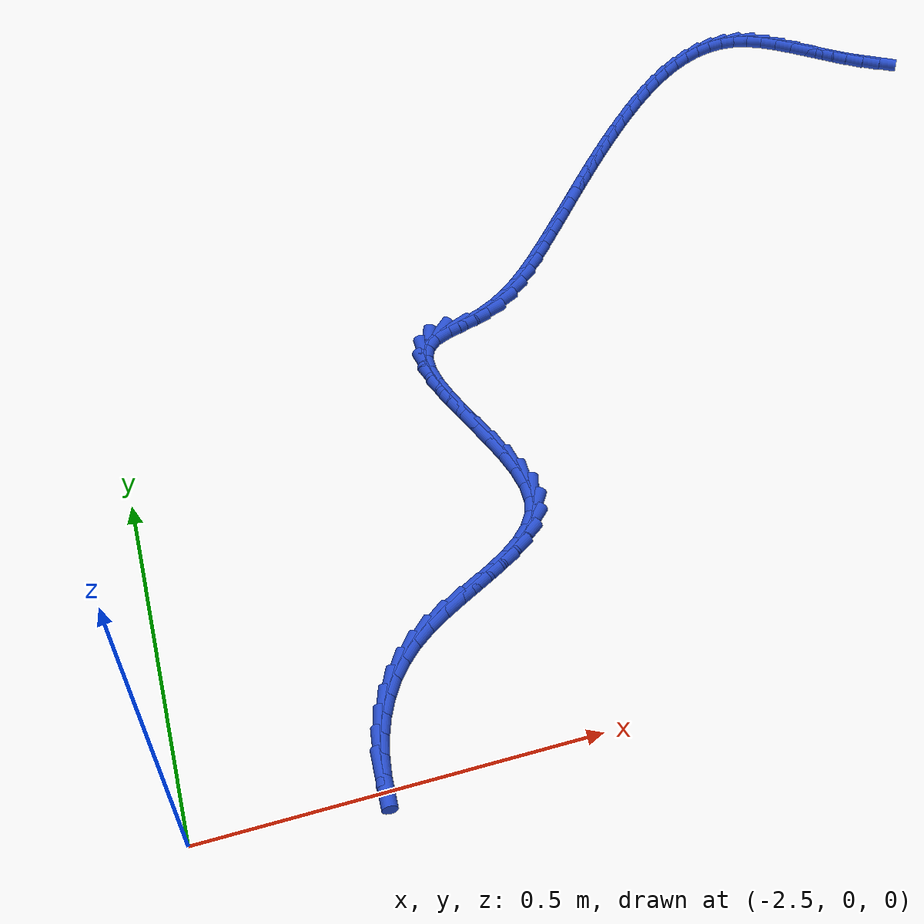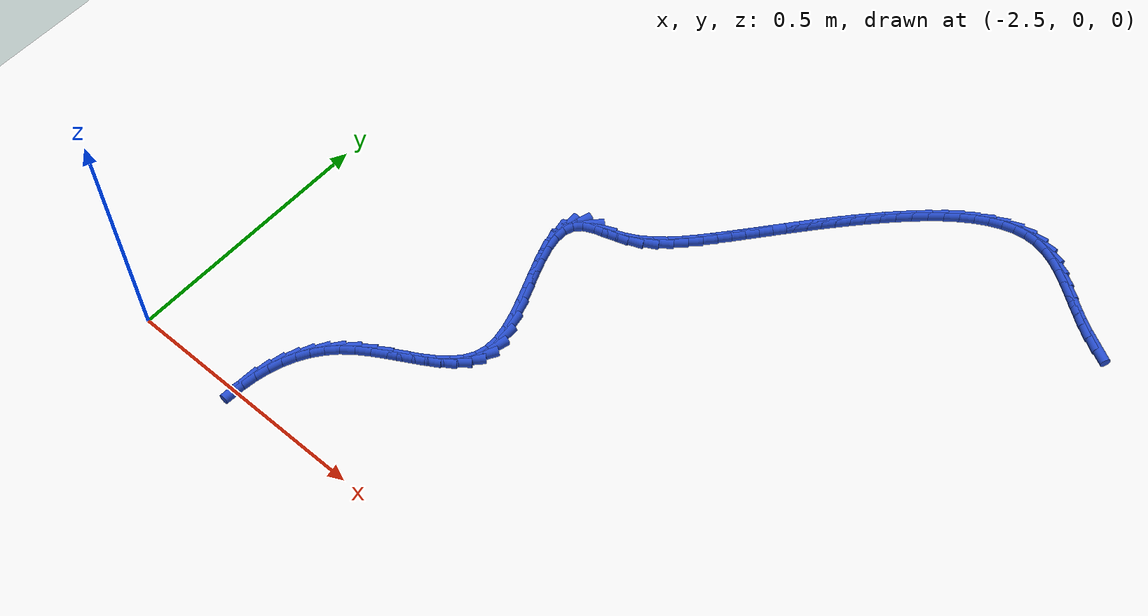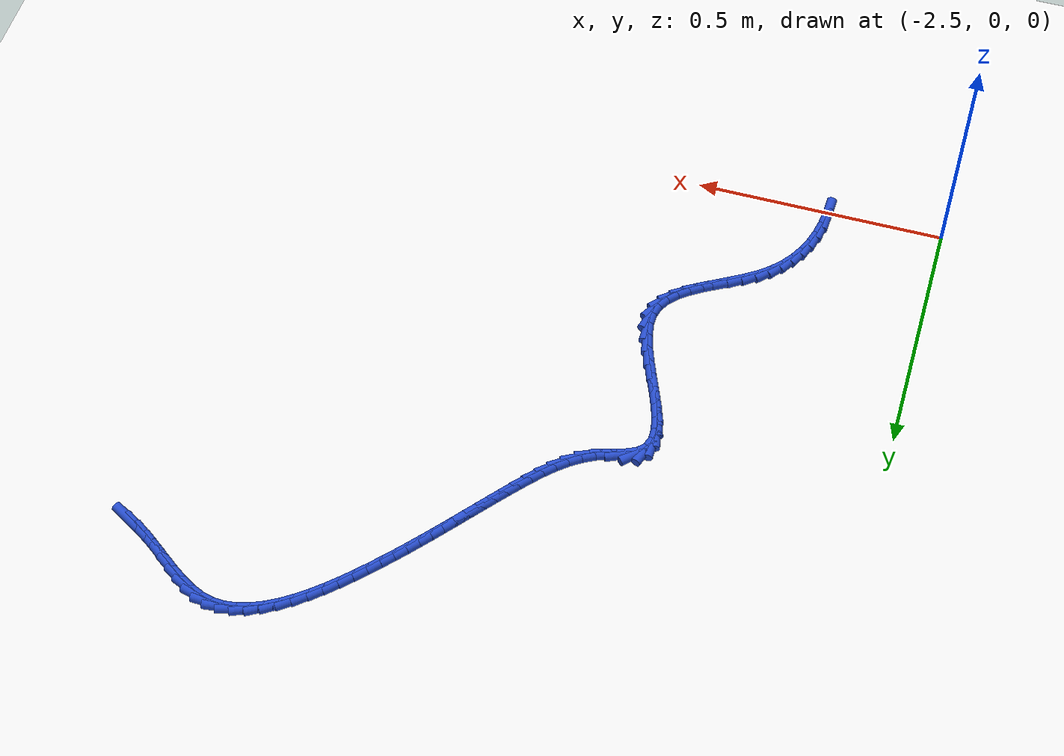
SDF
<sdf version="1.6">
 <world name="default">
  <model name="ground_plane">
   <static>1</static>
   <link name="link">
    <collision name="collision">
     <geometry><plane><normal>0 0 1</normal><size>100 100</size></plane></geometry>
     <surface><friction><ode><mu>100</mu><mu2>50</mu2></ode></friction></surface>
    </collision>
    <visual name="visual">
     <cast_shadows>0</cast_shadows>
     <geometry><plane><normal>0 0 1</normal><size>100 100</size></plane></geometry>
     <material>
      <script><uri>file://media/materials/scripts/gazebo.material</uri><name>Gazebo/WhiteGlow</name></script>
     </material>
    </visual>
   </link>
  </model>
  <model name="line">
   <link name="link_69">
    <pose>-1.178241568525793 1.0640109333053853 0.01 0 1.57 -0.509534865949744</pose>
    <collision name="collision">
     <geometry><cylinder><radius>0.01</radius><length>0.08</length></cylinder></geometry>
    </collision>
    <visual name="visual">
     <material>
      <script><name>Gazebo/Blue</name><uri>file://media/materials/scripts/gazebo.material</uri></script>
     </material>
     <geometry><cylinder><radius>0.01</radius><length>0.08</length></cylinder></geometry>
    </visual>
   </link>
   <link name="link_70">
    <pose>-1.2019491219129372 1.0772574862821647 0.01 0 1.57 -0.5615446595074899</pose>
    <collision name="collision">
     <geometry><cylinder><radius>0.01</radius><length>0.08</length></cylinder></geometry>
    </collision>
    <visual name="visual">
     <material>
      <script><name>Gazebo/Blue</name><uri>file://media/materials/scripts/gazebo.material</uri></script>
     </material>
     <geometry><cylinder><radius>0.01</radius><length>0.08</length></cylinder></geometry>
    </visual>
   </link>
   <link name="link_71">
    <pose>-1.2252902554640879 1.0919414735727488 0.01 0 1.57 -0.6091170644989318</pose>
    <collision name="collision">
     <geometry><cylinder><radius>0.01</radius><length>0.08</length></cylinder></geometry>
    </collision>
    <visual name="visual">
     <material>
      <script><name>Gazebo/Blue</name><uri>file://media/materials/scripts/gazebo.material</uri></script>
     </material>
     <geometry><cylinder><radius>0.01</radius><length>0.08</length></cylinder></geometry>
    </visual>
   </link>
   <link name="link_72">
    <pose>-1.2482853941282275 1.1079830072588102 0.01 0 1.57 -0.6332920943570529</pose>
    <collision name="collision">
     <geometry><cylinder><radius>0.01</radius><length>0.08</length></cylinder></geometry>
    </collision>
    <visual name="visual">
     <material>
      <script><name>Gazebo/Blue</name><uri>file://media/materials/scripts/gazebo.material</uri></script>
     </material>
     <geometry><cylinder><radius>0.01</radius><length>0.08</length></cylinder></geometry>
    </visual>
   </link>
   <link name="link_73">
    <pose>-1.2710226570831045 1.1246760026507259 0.01 0 1.57 -0.6276344724910504</pose>
    <collision name="collision">
     <geometry><cylinder><radius>0.01</radius><length>0.08</length></cylinder></geometry>
    </collision>
    <visual name="visual">
     <material>
      <script><name>Gazebo/Blue</name><uri>file://media/materials/scripts/gazebo.material</uri></script>
     </material>
     <geometry><cylinder><radius>0.01</radius><length>0.08</length></cylinder></geometry>
    </visual>
   </link>
   <link name="link_74">
    <pose>-1.2936167971659391 1.1410680038116798 0.01 0 1.57 -0.590883095689038</pose>
    <collision name="collision">
     <geometry><cylinder><radius>0.01</radius><length>0.08</length></cylinder></geometry>
    </collision>
    <visual name="visual">
     <material>
      <script><name>Gazebo/Blue</name><uri>file://media/materials/scripts/gazebo.material</uri></script>
     </material>
     <geometry><cylinder><radius>0.01</radius><length>0.08</length></cylinder></geometry>
    </visual>
   </link>
   <link name="link_75">
    <pose>-1.3161826310915872 1.156205963912983 0.01 0 1.57 -0.518702572087245</pose>
    <collision name="collision">
     <geometry><cylinder><radius>0.01</radius><length>0.08</length></cylinder></geometry>
    </collision>
    <visual name="visual">
     <material>
      <script><name>Gazebo/Blue</name><uri>file://media/materials/scripts/gazebo.material</uri></script>
     </material>
     <geometry><cylinder><radius>0.01</radius><length>0.08</length></cylinder></geometry>
    </visual>
   </link>
   <link name="link_76">
    <pose>-1.3388349755749063 1.169136836125945 0.01 0 1.57 -0.40401559324457265</pose>
    <collision name="collision">
     <geometry><cylinder><radius>0.01</radius><length>0.08</length></cylinder></geometry>
    </collision>
    <visual name="visual">
     <material>
      <script><name>Gazebo/Blue</name><uri>file://media/materials/scripts/gazebo.material</uri></script>
     </material>
     <geometry><cylinder><radius>0.01</radius><length>0.08</length></cylinder></geometry>
    </visual>
   </link>
   <link name="link_77">
    <pose>-1.361688647330753 1.178907573621876 0.01 0 1.57 -0.23969437456837328</pose>
    <collision name="collision">
     <geometry><cylinder><radius>0.01</radius><length>0.08</length></cylinder></geometry>
    </collision>
    <visual name="visual">
     <material>
      <script><name>Gazebo/Blue</name><uri>file://media/materials/scripts/gazebo.material</uri></script>
     </material>
     <geometry><cylinder><radius>0.01</radius><length>0.08</length></cylinder></geometry>
    </visual>
   </link>
   <link name="link_78">
    <pose>-1.3848576697998092 1.1845699158669871 0.01 0 1.57 -0.04537486233490106</pose>
    <collision name="collision">
     <geometry><cylinder><radius>0.01</radius><length>0.08</length></cylinder></geometry>
    </collision>
    <visual name="visual">
     <material>
      <script><name>Gazebo/Blue</name><uri>file://media/materials/scripts/gazebo.material</uri></script>
     </material>
     <geometry><cylinder><radius>0.01</radius><length>0.08</length></cylinder></geometry>
    </visual>
   </link>
   <link name="link_79">
    <pose>-1.4083794382031043 1.1856379459520499 0.01 0 1.57 0.13261015829464748</pose>
    <collision name="collision">
     <geometry><cylinder><radius>0.01</radius><length>0.08</length></cylinder></geometry>
    </collision>
    <visual name="visual">
     <material>
      <script><name>Gazebo/Blue</name><uri>file://media/materials/scripts/gazebo.material</uri></script>
     </material>
     <geometry><cylinder><radius>0.01</radius><length>0.08</length></cylinder></geometry>
    </visual>
   </link>
   <link name="link_80">
    <pose>-1.4321519427688403 1.18246686020207 0.01 0 1.57 0.283529482671724</pose>
    <collision name="collision">
     <geometry><cylinder><radius>0.01</radius><length>0.08</length></cylinder></geometry>
    </collision>
    <visual name="visual">
     <material>
      <script><name>Gazebo/Blue</name><uri>file://media/materials/scripts/gazebo.material</uri></script>
     </material>
     <geometry><cylinder><radius>0.01</radius><length>0.08</length></cylinder></geometry>
    </visual>
   </link>
   <link name="link_81">
    <pose>-1.4560583975926928 1.17550100813783 0.01 0 1.57 0.40712460967679703</pose>
    <collision name="collision">
     <geometry><cylinder><radius>0.01</radius><length>0.08</length></cylinder></geometry>
    </collision>
    <visual name="visual">
     <material>
      <script><name>Gazebo/Blue</name><uri>file://media/materials/scripts/gazebo.material</uri></script>
     </material>
     <geometry><cylinder><radius>0.01</radius><length>0.08</length></cylinder></geometry>
    </visual>
   </link>
   <link name="link_82">
    <pose>-1.4799820167703381 1.1651847392801113 0.01 0 1.57 0.5066744358530403</pose>
    <collision name="collision">
     <geometry><cylinder><radius>0.01</radius><length>0.08</length></cylinder></geometry>
    </collision>
    <visual name="visual">
     <material>
      <script><name>Gazebo/Blue</name><uri>file://media/materials/scripts/gazebo.material</uri></script>
     </material>
     <geometry><cylinder><radius>0.01</radius><length>0.08</length></cylinder></geometry>
    </visual>
   </link>
   <link name="link_83">
    <pose>-1.5038060143974532 1.1519624031496964 0.01 0 1.57 0.586407367632276</pose>
    <collision name="collision">
     <geometry><cylinder><radius>0.01</radius><length>0.08</length></cylinder></geometry>
    </collision>
    <visual name="visual">
     <material>
      <script><name>Gazebo/Blue</name><uri>file://media/materials/scripts/gazebo.material</uri></script>
     </material>
     <geometry><cylinder><radius>0.01</radius><length>0.08</length></cylinder></geometry>
    </visual>
   </link>
   <link name="link_84">
    <pose>-1.527413604569713 1.1362783492673671 0.01 0 1.57 0.6502211550913911</pose>
    <collision name="collision">
     <geometry><cylinder><radius>0.01</radius><length>0.08</length></cylinder></geometry>
    </collision>
    <visual name="visual">
     <material>
      <script><name>Gazebo/Blue</name><uri>file://media/materials/scripts/gazebo.material</uri></script>
     </material>
     <geometry><cylinder><radius>0.01</radius><length>0.08</length></cylinder></geometry>
    </visual>
   </link>
   <link name="link_85">
    <pose>-1.5506880013827944 1.1185769271539046 0.01 0 1.57 0.7012724092792946</pose>
    <collision name="collision">
     <geometry><cylinder><radius>0.01</radius><length>0.08</length></cylinder></geometry>
    </collision>
    <visual name="visual">
     <material>
      <script><name>Gazebo/Blue</name><uri>file://media/materials/scripts/gazebo.material</uri></script>
     </material>
     <geometry><cylinder><radius>0.01</radius><length>0.08</length></cylinder></geometry>
    </visual>
   </link>
   <link name="link_86">
    <pose>-1.573512418932374 1.0993024863300909 0.01 0 1.57 0.7419536643329633</pose>
    <collision name="collision">
     <geometry><cylinder><radius>0.01</radius><length>0.08</length></cylinder></geometry>
    </collision>
    <visual name="visual">
     <material>
      <script><name>Gazebo/Blue</name><uri>file://media/materials/scripts/gazebo.material</uri></script>
     </material>
     <geometry><cylinder><radius>0.01</radius><length>0.08</length></cylinder></geometry>
    </visual>
   </link>
   <link name="link_87">
    <pose>-1.595770071314128 1.0788993763167083 0.01 0 1.57 0.7739909188255835</pose>
    <collision name="collision">
     <geometry><cylinder><radius>0.01</radius><length>0.08</length></cylinder></geometry>
    </collision>
    <visual name="visual">
     <material>
      <script><name>Gazebo/Blue</name><uri>file://media/materials/scripts/gazebo.material</uri></script>
     </material>
     <geometry><cylinder><radius>0.01</radius><length>0.08</length></cylinder></geometry>
    </visual>
   </link>
   <link name="link_88">
    <pose>-1.6173441726237328 1.057811946634539 0.01 0 1.57 0.7985475287118591</pose>
    <collision name="collision">
     <geometry><cylinder><radius>0.01</radius><length>0.08</length></cylinder></geometry>
    </collision>
    <visual name="visual">
     <material>
      <script><name>Gazebo/Blue</name><uri>file://media/materials/scripts/gazebo.material</uri></script>
     </material>
     <geometry><cylinder><radius>0.01</radius><length>0.08</length></cylinder></geometry>
    </visual>
   </link>
   <link name="link_89">
    <pose>-1.6381179369568635 1.0364845468043642 0.01 0 1.57 0.8166653172813255</pose>
    <collision name="collision">
     <geometry><cylinder><radius>0.01</radius><length>0.08</length></cylinder></geometry>
    </collision>
    <visual name="visual">
     <material>
      <script><name>Gazebo/Blue</name><uri>file://media/materials/scripts/gazebo.material</uri></script>
     </material>
     <geometry><cylinder><radius>0.01</radius><length>0.08</length></cylinder></geometry>
    </visual>
   </link>
   <link name="link_90">
    <pose>-1.6579910423480961 1.0153281473462756 0.01 0 1.57 0.8317510527437973</pose>
    <collision name="collision">
     <geometry><cylinder><radius>0.01</radius><length>0.08</length></cylinder></geometry>
    </collision>
    <visual name="visual">
     <material>
      <script><name>Gazebo/Blue</name><uri>file://media/materials/scripts/gazebo.material</uri></script>
     </material>
     <geometry><cylinder><radius>0.01</radius><length>0.08</length></cylinder></geometry>
    </visual>
   </link>
   <link name="link_91">
    <pose>-1.6770068786862795 0.9944623572712722 0.01 0 1.57 0.8452467374969301</pose>
    <collision name="collision">
     <geometry><cylinder><radius>0.01</radius><length>0.08</length></cylinder></geometry>
    </collision>
    <visual name="visual">
     <material>
      <script><name>Gazebo/Blue</name><uri>file://media/materials/scripts/gazebo.material</uri></script>
     </material>
     <geometry><cylinder><radius>0.01</radius><length>0.08</length></cylinder></geometry>
    </visual>
   </link>
   <link name="link_92">
    <pose>-1.6952830082903796 0.9738564083561232 0.01 0 1.57 0.8568861856976601</pose>
    <collision name="collision">
     <geometry><cylinder><radius>0.01</radius><length>0.08</length></cylinder></geometry>
    </collision>
    <visual name="visual">
     <material>
      <script><name>Gazebo/Blue</name><uri>file://media/materials/scripts/gazebo.material</uri></script>
     </material>
     <geometry><cylinder><radius>0.01</radius><length>0.08</length></cylinder></geometry>
    </visual>
   </link>
   <link name="link_93">
    <pose>-1.7129376117498345 0.9534782788956352 0.01 0 1.57 0.8664093958550482</pose>
    <collision name="collision">
     <geometry><cylinder><radius>0.01</radius><length>0.08</length></cylinder></geometry>
    </collision>
    <visual name="visual">
     <material>
      <script><name>Gazebo/Blue</name><uri>file://media/materials/scripts/gazebo.material</uri></script>
     </material>
     <geometry><cylinder><radius>0.01</radius><length>0.08</length></cylinder></geometry>
    </visual>
   </link>
   <link name="link_94">
    <pose>-1.730088869654079 0.9332959471846132 0.01 0 1.57 0.8735878445117617</pose>
    <collision name="collision">
     <geometry><cylinder><radius>0.01</radius><length>0.08</length></cylinder></geometry>
    </collision>
    <visual name="visual">
     <material>
      <script><name>Gazebo/Blue</name><uri>file://media/materials/scripts/gazebo.material</uri></script>
     </material>
     <geometry><cylinder><radius>0.01</radius><length>0.08</length></cylinder></geometry>
    </visual>
   </link>
   <link name="link_95">
    <pose>-1.746854962592551 0.9132773915178635 0.01 0 1.57 0.8782350524603796</pose>
    <collision name="collision">
     <geometry><cylinder><radius>0.01</radius><length>0.08</length></cylinder></geometry>
    </collision>
    <visual name="visual">
     <material>
      <script><name>Gazebo/Blue</name><uri>file://media/materials/scripts/gazebo.material</uri></script>
     </material>
     <geometry><cylinder><radius>0.01</radius><length>0.08</length></cylinder></geometry>
    </visual>
   </link>
   <link name="link_96">
    <pose>-1.7633540711546858 0.8933905901901926 0.01 0 1.57 0.88021574825778</pose>
    <collision name="collision">
     <geometry><cylinder><radius>0.01</radius><length>0.08</length></cylinder></geometry>
    </collision>
    <visual name="visual">
     <material>
      <script><name>Gazebo/Blue</name><uri>file://media/materials/scripts/gazebo.material</uri></script>
     </material>
     <geometry><cylinder><radius>0.01</radius><length>0.08</length></cylinder></geometry>
    </visual>
   </link>
   <link name="link_97">
    <pose>-1.7797043759299207 0.8736035214964067 0.01 0 1.57 0.8794529847646619</pose>
    <collision name="collision">
     <geometry><cylinder><radius>0.01</radius><length>0.08</length></cylinder></geometry>
    </collision>
    <visual name="visual">
     <material>
      <script><name>Gazebo/Blue</name><uri>file://media/materials/scripts/gazebo.material</uri></script>
     </material>
     <geometry><cylinder><radius>0.01</radius><length>0.08</length></cylinder></geometry>
    </visual>
   </link>
   <link name="link_98">
    <pose>-1.7960240575076922 0.8538841637313117 0.01 0 1.57 0.8759326816802169</pose>
    <collision name="collision">
     <geometry><cylinder><radius>0.01</radius><length>0.08</length></cylinder></geometry>
    </collision>
    <visual name="visual">
     <material>
      <script><name>Gazebo/Blue</name><uri>file://media/materials/scripts/gazebo.material</uri></script>
     </material>
     <geometry><cylinder><radius>0.01</radius><length>0.08</length></cylinder></geometry>
    </visual>
   </link>
   <link name="link_99">
    <pose>-1.8124312964774365 0.8342004951897137 0.01 0 1.57 0.8697052200891026</pose>
    <collision name="collision">
     <geometry><cylinder><radius>0.01</radius><length>0.08</length></cylinder></geometry>
    </collision>
    <visual name="visual">
     <material>
      <script><name>Gazebo/Blue</name><uri>file://media/materials/scripts/gazebo.material</uri></script>
     </material>
     <geometry><cylinder><radius>0.01</radius><length>0.08</length></cylinder></geometry>
    </visual>
   </link>
   <link name="link_100">
    <pose>-1.8290442734285906 0.8145204941664185 0.01 0 1.57 0.8608838980450045</pose>
    <collision name="collision">
     <geometry><cylinder><radius>0.01</radius><length>0.08</length></cylinder></geometry>
    </collision>
    <visual name="visual">
     <material>
      <script><name>Gazebo/Blue</name><uri>file://media/materials/scripts/gazebo.material</uri></script>
     </material>
     <geometry><cylinder><radius>0.01</radius><length>0.08</length></cylinder></geometry>
    </visual>
   </link>
   <link name="link_101">
    <pose>-1.8459811689505907 0.7948121389562327 0.01 0 1.57 0.8477260435649949</pose>
    <collision name="collision">
     <geometry><cylinder><radius>0.01</radius><length>0.08</length></cylinder></geometry>
    </collision>
    <visual name="visual">
     <material>
      <script><name>Gazebo/Blue</name><uri>file://media/materials/scripts/gazebo.material</uri></script>
     </material>
     <geometry><cylinder><radius>0.01</radius><length>0.08</length></cylinder></geometry>
    </visual>
   </link>
   <link name="link_102">
    <pose>-1.863379152522464 0.7750980378502553 0.01 0 1.57 0.8181100241296874</pose>
    <collision name="collision">
     <geometry><cylinder><radius>0.01</radius><length>0.08</length></cylinder></geometry>
    </collision>
    <visual name="visual">
     <material>
      <script><name>Gazebo/Blue</name><uri>file://media/materials/scripts/gazebo.material</uri></script>
     </material>
     <geometry><cylinder><radius>0.01</radius><length>0.08</length></cylinder></geometry>
    </visual>
   </link>
   <link name="link_103">
    <pose>-1.8814979282034305 0.7557533244217669 0.01 0 1.57 0.7671141713885526</pose>
    <collision name="collision">
     <geometry><cylinder><radius>0.01</radius><length>0.08</length></cylinder></geometry>
    </collision>
    <visual name="visual">
     <material>
      <script><name>Gazebo/Blue</name><uri>file://media/materials/scripts/gazebo.material</uri></script>
     </material>
     <geometry><cylinder><radius>0.01</radius><length>0.08</length></cylinder></geometry>
    </visual>
   </link>
   <link name="link_104">
    <pose>-1.9006458527889394 0.737293103503931 0.01 0 1.57 0.6944205681469333</pose>
    <collision name="collision">
     <geometry><cylinder><radius>0.01</radius><length>0.08</length></cylinder></geometry>
    </collision>
    <visual name="visual">
     <material>
      <script><name>Gazebo/Blue</name><uri>file://media/materials/scripts/gazebo.material</uri></script>
     </material>
     <geometry><cylinder><radius>0.01</radius><length>0.08</length></cylinder></geometry>
    </visual>
   </link>
   <link name="link_105">
    <pose>-1.9211314062230809 0.7202328342218158 0.01 0 1.57 0.6001161414253339</pose>
    <collision name="collision">
     <geometry><cylinder><radius>0.01</radius><length>0.08</length></cylinder></geometry>
    </collision>
    <visual name="visual">
     <material>
      <script><name>Gazebo/Blue</name><uri>file://media/materials/scripts/gazebo.material</uri></script>
     </material>
     <geometry><cylinder><radius>0.01</radius><length>0.08</length></cylinder></geometry>
    </visual>
   </link>
   <link name="link_106">
    <pose>-1.9432630684499457 0.7050879757004894 0.01 0 1.57 0.48568056202038196</pose>
    <collision name="collision">
     <geometry><cylinder><radius>0.01</radius><length>0.08</length></cylinder></geometry>
    </collision>
    <visual name="visual">
     <material>
      <script><name>Gazebo/Blue</name><uri>file://media/materials/scripts/gazebo.material</uri></script>
     </material>
     <geometry><cylinder><radius>0.01</radius><length>0.08</length></cylinder></geometry>
    </visual>
   </link>
   <link name="link_107">
    <pose>-1.967349319413626 0.6923739870650198 0.01 0 1.57 0.35747045404721106</pose>
    <collision name="collision">
     <geometry><cylinder><radius>0.01</radius><length>0.08</length></cylinder></geometry>
    </collision>
    <visual name="visual">
     <material>
      <script><name>Gazebo/Blue</name><uri>file://media/materials/scripts/gazebo.material</uri></script>
     </material>
     <geometry><cylinder><radius>0.01</radius><length>0.08</length></cylinder></geometry>
    </visual>
   </link>
   <link name="link_108">
    <pose>-1.993634852835569 0.6825558760559495 0.01 0 1.57 0.29940279071020587</pose>
    <collision name="collision">
     <geometry><cylinder><radius>0.01</radius><length>0.08</length></cylinder></geometry>
    </collision>
    <visual name="visual">
     <material>
      <script><name>Gazebo/Blue</name><uri>file://media/materials/scripts/gazebo.material</uri></script>
     </material>
     <geometry><cylinder><radius>0.01</radius><length>0.08</length></cylinder></geometry>
    </visual>
   </link>
   <link name="link_109">
    <pose>-2.0201717484376656 0.6743644136550835 0.01 0 1.57 0.4227401165103454</pose>
    <collision name="collision">
     <geometry><cylinder><radius>0.01</radius><length>0.08</length></cylinder></geometry>
    </collision>
    <visual name="visual">
     <material>
      <script><name>Gazebo/Blue</name><uri>file://media/materials/scripts/gazebo.material</uri></script>
     </material>
     <geometry><cylinder><radius>0.01</radius><length>0.08</length></cylinder></geometry>
    </visual>
   </link>
   <link name="link_110">
    <pose>-2.0423197322787647 0.6644008518574277 0.01 0 1.57 0.7961330614627471</pose>
    <collision name="collision">
     <geometry><cylinder><radius>0.01</radius><length>0.08</length></cylinder></geometry>
    </collision>
    <visual name="visual">
     <material>
      <script><name>Gazebo/Blue</name><uri>file://media/materials/scripts/gazebo.material</uri></script>
     </material>
     <geometry><cylinder><radius>0.01</radius><length>0.08</length></cylinder></geometry>
    </visual>
   </link>
   <link name="link_111">
    <pose>-2.0564577563465627 0.6499559815451719 0.01 0 1.57 1.2368701031992833</pose>
    <collision name="collision">
     <geometry><cylinder><radius>0.01</radius><length>0.08</length></cylinder></geometry>
    </collision>
    <visual name="visual">
     <material>
      <script><name>Gazebo/Blue</name><uri>file://media/materials/scripts/gazebo.material</uri></script>
     </material>
     <geometry><cylinder><radius>0.01</radius><length>0.08</length></cylinder></geometry>
    </visual>
   </link>
   <link name="link_112">
    <pose>-2.0629952077483105 0.6311115922851163 0.01 0 1.57 1.561807511215831</pose>
    <collision name="collision">
     <geometry><cylinder><radius>0.01</radius><length>0.08</length></cylinder></geometry>
    </collision>
    <visual name="visual">
     <material>
      <script><name>Gazebo/Blue</name><uri>file://media/materials/scripts/gazebo.material</uri></script>
     </material>
     <geometry><cylinder><radius>0.01</radius><length>0.08</length></cylinder></geometry>
    </visual>
   </link>
   <link name="link_113">
    <pose>-2.0631980812011985 0.6085426579136592 0.01 0 1.57 -1.3831024319217142</pose>
    <collision name="collision">
     <geometry><cylinder><radius>0.01</radius><length>0.08</length></cylinder></geometry>
    </collision>
    <visual name="visual">
     <material>
      <script><name>Gazebo/Blue</name><uri>file://media/materials/scripts/gazebo.material</uri></script>
     </material>
     <geometry><cylinder><radius>0.01</radius><length>0.08</length></cylinder></geometry>
    </visual>
   </link>
   <link name="link_114">
    <pose>-2.0583323714224195 0.5829241522672013 0.01 0 1.57 -1.270502376990624</pose>
    <collision name="collision">
     <geometry><cylinder><radius>0.01</radius><length>0.08</length></cylinder></geometry>
    </collision>
    <visual name="visual">
     <material>
      <script><name>Gazebo/Blue</name><uri>file://media/materials/scripts/gazebo.material</uri></script>
     </material>
     <geometry><cylinder><radius>0.01</radius><length>0.08</length></cylinder></geometry>
    </visual>
   </link>
   <link name="link_115">
    <pose>-2.0496640731291627 0.5549310491821412 0.01 0 1.57 -1.209956903300782</pose>
    <collision name="collision">
     <geometry><cylinder><radius>0.01</radius><length>0.08</length></cylinder></geometry>
    </collision>
    <visual name="visual">
     <material>
      <script><name>Gazebo/Blue</name><uri>file://media/materials/scripts/gazebo.material</uri></script>
     </material>
     <geometry><cylinder><radius>0.01</radius><length>0.08</length></cylinder></geometry>
    </visual>
   </link>
   <link name="link_116">
    <pose>-2.038459181038621 0.5252383224948786 0.01 0 1.57 -1.185009869804219</pose>
    <collision name="collision">
     <geometry><cylinder><radius>0.01</radius><length>0.08</length></cylinder></geometry>
    </collision>
    <visual name="visual">
     <material>
      <script><name>Gazebo/Blue</name><uri>file://media/materials/scripts/gazebo.material</uri></script>
     </material>
     <geometry><cylinder><radius>0.01</radius><length>0.08</length></cylinder></geometry>
    </visual>
   </link>
   <link name="link_117">
    <pose>-2.025983689867983 0.4945209460418119 0.01 0 1.57 -1.188812526350135</pose>
    <collision name="collision">
     <geometry><cylinder><radius>0.01</radius><length>0.08</length></cylinder></geometry>
    </collision>
    <visual name="visual">
     <material>
      <script><name>Gazebo/Blue</name><uri>file://media/materials/scripts/gazebo.material</uri></script>
     </material>
     <geometry><cylinder><radius>0.01</radius><length>0.08</length></cylinder></geometry>
    </visual>
   </link>
   <link name="link_118">
    <pose>-2.0135035943344413 0.463453893659342 0.01 0 1.57 -1.2208798929341698</pose>
    <collision name="collision">
     <geometry><cylinder><radius>0.01</radius><length>0.08</length></cylinder></geometry>
    </collision>
    <visual name="visual">
     <material>
      <script><name>Gazebo/Blue</name><uri>file://media/materials/scripts/gazebo.material</uri></script>
     </material>
     <geometry><cylinder><radius>0.01</radius><length>0.08</length></cylinder></geometry>
    </visual>
   </link>
   <link name="link_119">
    <pose>-2.002284889155185 0.4327121391838671 0.01 0 1.57 -1.286484162610753</pose>
    <collision name="collision">
     <geometry><cylinder><radius>0.01</radius><length>0.08</length></cylinder></geometry>
    </collision>
    <visual name="visual">
     <material>
      <script><name>Gazebo/Blue</name><uri>file://media/materials/scripts/gazebo.material</uri></script>
     </material>
     <geometry><cylinder><radius>0.01</radius><length>0.08</length></cylinder></geometry>
    </visual>
   </link>
   <link name="link_120">
    <pose>-1.9935935690474067 0.402970656451787 0.01 0 1.57 -1.398022637790491</pose>
    <collision name="collision">
     <geometry><cylinder><radius>0.01</radius><length>0.08</length></cylinder></geometry>
    </collision>
    <visual name="visual">
     <material>
      <script><name>Gazebo/Blue</name><uri>file://media/materials/scripts/gazebo.material</uri></script>
     </material>
     <geometry><cylinder><radius>0.01</radius><length>0.08</length></cylinder></geometry>
    </visual>
   </link>
   <link name="link_121">
    <pose>-1.9886956287282953 0.3749044192995006 0.01 0 1.57 1.5645188359384317</pose>
    <collision name="collision">
     <geometry><cylinder><radius>0.01</radius><length>0.08</length></cylinder></geometry>
    </collision>
    <visual name="visual">
     <material>
      <script><name>Gazebo/Blue</name><uri>file://media/materials/scripts/gazebo.material</uri></script>
     </material>
     <geometry><cylinder><radius>0.01</radius><length>0.08</length></cylinder></geometry>
    </visual>
   </link>
   <link name="link_122">
    <pose>-1.9888570629150437 0.34918840156340725 0.01 0 1.57 1.3009812878300369</pose>
    <collision name="collision">
     <geometry><cylinder><radius>0.01</radius><length>0.08</length></cylinder></geometry>
    </collision>
    <visual name="visual">
     <material>
      <script><name>Gazebo/Blue</name><uri>file://media/materials/scripts/gazebo.material</uri></script>
     </material>
     <geometry><cylinder><radius>0.01</radius><length>0.08</length></cylinder></geometry>
    </visual>
   </link>
   <link name="link_123">
    <pose>-1.9951596027603449 0.3263992699974694 0.01 0 1.57 1.0278579517273267</pose>
    <collision name="collision">
     <geometry><cylinder><radius>0.01</radius><length>0.08</length></cylinder></geometry>
    </collision>
    <visual name="visual">
     <material>
      <script><name>Gazebo/Blue</name><uri>file://media/materials/scripts/gazebo.material</uri></script>
     </material>
     <geometry><cylinder><radius>0.01</radius><length>0.08</length></cylinder></geometry>
    </visual>
   </link>
   <link name="link_124">
    <pose>-2.007256877147017 0.3063517796453383 0.01 0 1.57 0.8132741041140104</pose>
    <collision name="collision">
     <geometry><cylinder><radius>0.01</radius><length>0.08</length></cylinder></geometry>
    </collision>
    <visual name="visual">
     <material>
      <script><name>Gazebo/Blue</name><uri>file://media/materials/scripts/gazebo.material</uri></script>
     </material>
     <geometry><cylinder><radius>0.01</radius><length>0.08</length></cylinder></geometry>
    </visual>
   </link>
   <link name="link_125">
    <pose>-2.024135547647349 0.28850484954717626 0.01 0 1.57 0.6650697846961515</pose>
    <collision name="collision">
     <geometry><cylinder><radius>0.01</radius><length>0.08</length></cylinder></geometry>
    </collision>
    <visual name="visual">
     <material>
      <script><name>Gazebo/Blue</name><uri>file://media/materials/scripts/gazebo.material</uri></script>
     </material>
     <geometry><cylinder><radius>0.01</radius><length>0.08</length></cylinder></geometry>
    </visual>
   </link>
   <link name="link_126">
    <pose>-2.044778508621155 0.2723153888847757 0.01 0 1.57 0.5725030857141743</pose>
    <collision name="collision">
     <geometry><cylinder><radius>0.01</radius><length>0.08</length></cylinder></geometry>
    </collision>
    <visual name="visual">
     <material>
      <script><name>Gazebo/Blue</name><uri>file://media/materials/scripts/gazebo.material</uri></script>
     </material>
     <geometry><cylinder><radius>0.01</radius><length>0.08</length></cylinder></geometry>
    </visual>
   </link>
   <link name="link_127">
    <pose>-2.0681686544282476 0.25724030683993 0.01 0 1.57 0.5236174529624185</pose>
    <collision name="collision">
     <geometry><cylinder><radius>0.01</radius><length>0.08</length></cylinder></geometry>
    </collision>
    <visual name="visual">
     <material>
      <script><name>Gazebo/Blue</name><uri>file://media/materials/scripts/gazebo.material</uri></script>
     </material>
     <geometry><cylinder><radius>0.01</radius><length>0.08</length></cylinder></geometry>
    </visual>
   </link>
   <link name="link_128">
    <pose>-2.093288879428443 0.24273651259443169 0.01 0 1.57 0.5107536783787863</pose>
    <collision name="collision">
     <geometry><cylinder><radius>0.01</radius><length>0.08</length></cylinder></geometry>
    </collision>
    <visual name="visual">
     <material>
      <script><name>Gazebo/Blue</name><uri>file://media/materials/scripts/gazebo.material</uri></script>
     </material>
     <geometry><cylinder><radius>0.01</radius><length>0.08</length></cylinder></geometry>
    </visual>
   </link>
   <link name="link_129">
    <pose>-2.119122077981554 0.22826091533007345 0.01 0 1.57 0.5309494199105488</pose>
    <collision name="collision">
     <geometry><cylinder><radius>0.01</radius><length>0.08</length></cylinder></geometry>
    </collision>
    <visual name="visual">
     <material>
      <script><name>Gazebo/Blue</name><uri>file://media/materials/scripts/gazebo.material</uri></script>
     </material>
     <geometry><cylinder><radius>0.01</radius><length>0.08</length></cylinder></geometry>
    </visual>
   </link>
   <link name="link_130">
    <pose>-2.1446511444473955 0.21327042422864814 0.01 0 1.57 0.5854221177062098</pose>
    <collision name="collision">
     <geometry><cylinder><radius>0.01</radius><length>0.08</length></cylinder></geometry>
    </collision>
    <visual name="visual">
     <material>
      <script><name>Gazebo/Blue</name><uri>file://media/materials/scripts/gazebo.material</uri></script>
     </material>
     <geometry><cylinder><radius>0.01</radius><length>0.08</length></cylinder></geometry>
    </visual>
   </link>
   <link name="link_131">
    <pose>-2.1688589731857815 0.1972219484719482 0.01 0 1.57 0.6787098518753105</pose>
    <collision name="collision">
     <geometry><cylinder><radius>0.01</radius><length>0.08</length></cylinder></geometry>
    </collision>
    <visual name="visual">
     <material>
      <script><name>Gazebo/Blue</name><uri>file://media/materials/scripts/gazebo.material</uri></script>
     </material>
     <geometry><cylinder><radius>0.01</radius><length>0.08</length></cylinder></geometry>
    </visual>
   </link>
   <link name="link_132">
    <pose>-2.190736237723211 0.17957728313950627 0.01 0 1.57 0.7995797531105646</pose>
    <collision name="collision">
     <geometry><cylinder><radius>0.01</radius><length>0.08</length></cylinder></geometry>
    </collision>
    <visual name="visual">
     <material>
      <script><name>Gazebo/Blue</name><uri>file://media/materials/scripts/gazebo.material</uri></script>
     </material>
     <geometry><cylinder><radius>0.01</radius><length>0.08</length></cylinder></geometry>
    </visual>
   </link>
   <link name="link_133">
    <pose>-2.2097011144417644 0.16006672703626035 0.01 0 1.57 0.9219244124442776</pose>
    <collision name="collision">
     <geometry><cylinder><radius>0.01</radius><length>0.08</length></cylinder></geometry>
    </collision>
    <visual name="visual">
     <material>
      <script><name>Gazebo/Blue</name><uri>file://media/materials/scripts/gazebo.material</uri></script>
     </material>
     <geometry><cylinder><radius>0.01</radius><length>0.08</length></cylinder></geometry>
    </visual>
   </link>
   <link name="link_134">
    <pose>-2.2258127763475906 0.1388231727259695 0.01 0 1.57 1.040626440673417</pose>
    <collision name="collision">
     <geometry><cylinder><radius>0.01</radius><length>0.08</length></cylinder></geometry>
    </collision>
    <visual name="visual">
     <material>
      <script><name>Gazebo/Blue</name><uri>file://media/materials/scripts/gazebo.material</uri></script>
     </material>
     <geometry><cylinder><radius>0.01</radius><length>0.08</length></cylinder></geometry>
    </visual>
   </link>
   <link name="link_135">
    <pose>-2.2391830828389523 0.11601260376202265 0.01 0 1.57 1.1532585750931483</pose>
    <collision name="collision">
     <geometry><cylinder><radius>0.01</radius><length>0.08</length></cylinder></geometry>
    </collision>
    <visual name="visual">
     <material>
      <script><name>Gazebo/Blue</name><uri>file://media/materials/scripts/gazebo.material</uri></script>
     </material>
     <geometry><cylinder><radius>0.01</radius><length>0.08</length></cylinder></geometry>
    </visual>
   </link>
   <link name="link_136">
    <pose>-2.2499238933141115 0.09180100369780969 0.01 0 1.57 1.258235407238876</pose>
    <collision name="collision">
     <geometry><cylinder><radius>0.01</radius><length>0.08</length></cylinder></geometry>
    </collision>
    <visual name="visual">
     <material>
      <script><name>Gazebo/Blue</name><uri>file://media/materials/scripts/gazebo.material</uri></script>
     </material>
     <geometry><cylinder><radius>0.01</radius><length>0.08</length></cylinder></geometry>
    </visual>
   </link>
   <link name="link_137">
    <pose>-2.2581470671713304 0.06635435608671966 0.01 0 1.57 1.3548238092743885</pose>
    <collision name="collision">
     <geometry><cylinder><radius>0.01</radius><length>0.08</length></cylinder></geometry>
    </collision>
    <visual name="visual">
     <material>
      <script><name>Gazebo/Blue</name><uri>file://media/materials/scripts/gazebo.material</uri></script>
     </material>
     <geometry><cylinder><radius>0.01</radius><length>0.08</length></cylinder></geometry>
    </visual>
   </link>
   <link name="link_138">
    <pose>-2.263964463808873 0.0398386444821418 0.01 0 1.57 1.4429907903725707</pose>
    <collision name="collision">
     <geometry><cylinder><radius>0.01</radius><length>0.08</length></cylinder></geometry>
    </collision>
    <visual name="visual">
     <material>
      <script><name>Gazebo/Blue</name><uri>file://media/materials/scripts/gazebo.material</uri></script>
     </material>
     <geometry><cylinder><radius>0.01</radius><length>0.08</length></cylinder></geometry>
    </visual>
   </link>
   <link name="link_139">
    <pose>-2.2674879426250008 0.012419852437465411 0.01 0 1.57 1.5231897018064338</pose>
    <collision name="collision">
     <geometry><cylinder><radius>0.01</radius><length>0.08</length></cylinder></geometry>
    </collision>
    <visual name="visual">
     <material>
      <script><name>Gazebo/Blue</name><uri>file://media/materials/scripts/gazebo.material</uri></script>
     </material>
     <geometry><cylinder><radius>0.01</radius><length>0.08</length></cylinder></geometry>
    </visual>
   </link>
  </model>
 </world>
</sdf>
